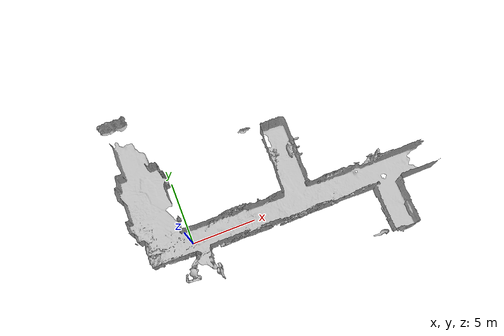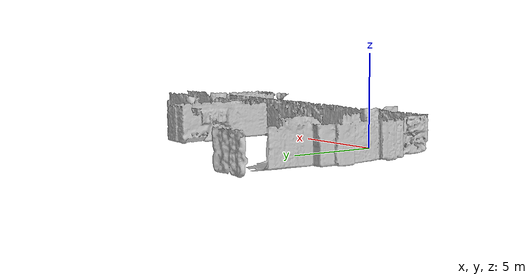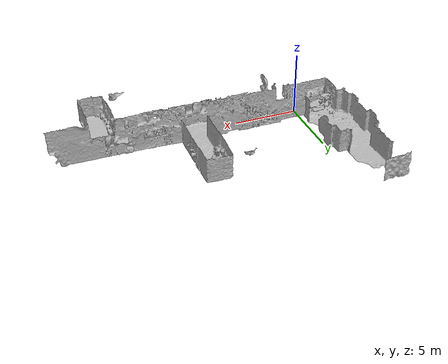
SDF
<?xml version="1.0"?>
<sdf version="1.7">
  <model name="scanned_environment">
    <static>true</static>
    <link name="link">
      <pose>0 0 0 0 0 0</pose>
      <collision name="walls">
        <geometry>
          <mesh>
            <uri>model://scanned_environment/meshes/environment_collision.obj</uri>
            <scale>1 1 1</scale>
          </mesh>
        </geometry>
        <surface>
          <friction><ode><mu>0.8</mu><mu2>0.8</mu2></ode></friction>
        </surface>
      </collision>
      <collision name="ground">
        <pose>0 0 0 0 0 0</pose>
        <geometry>
          <plane><normal>0 0 1</normal><size>60 40</size></plane>
        </geometry>
        <surface>
          <friction><ode><mu>1.0</mu><mu2>1.0</mu2></ode></friction>
        </surface>
      </collision>
      <visual name="visual">
        <geometry>
          <mesh>
            <uri>model://scanned_environment/meshes/environment_visual.obj</uri>
            <scale>1 1 1</scale>
          </mesh>
        </geometry>
      </visual>
    </link>
  </model>
</sdf>
